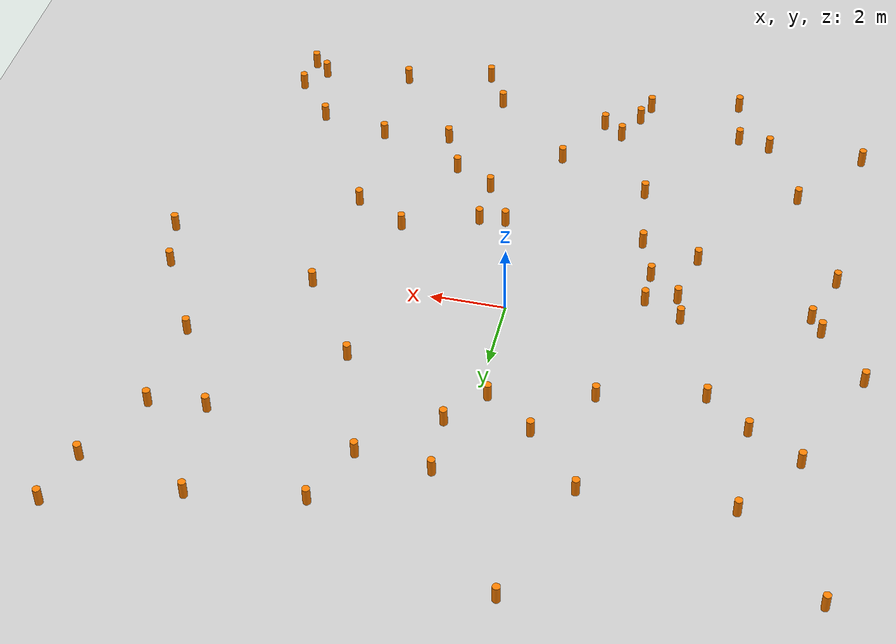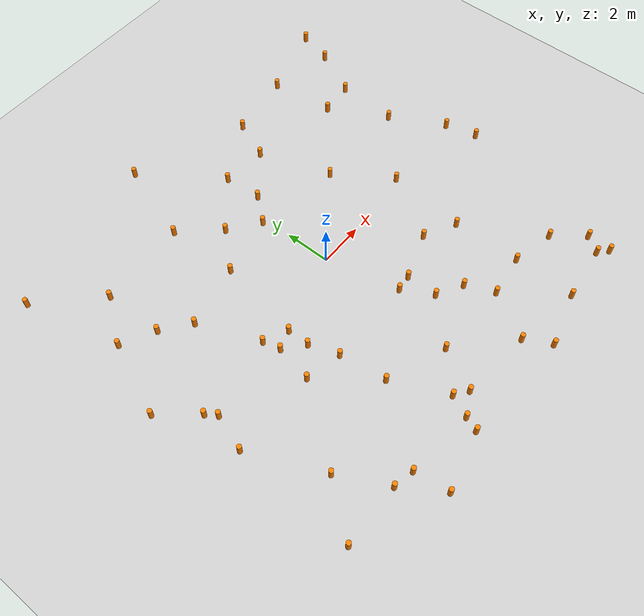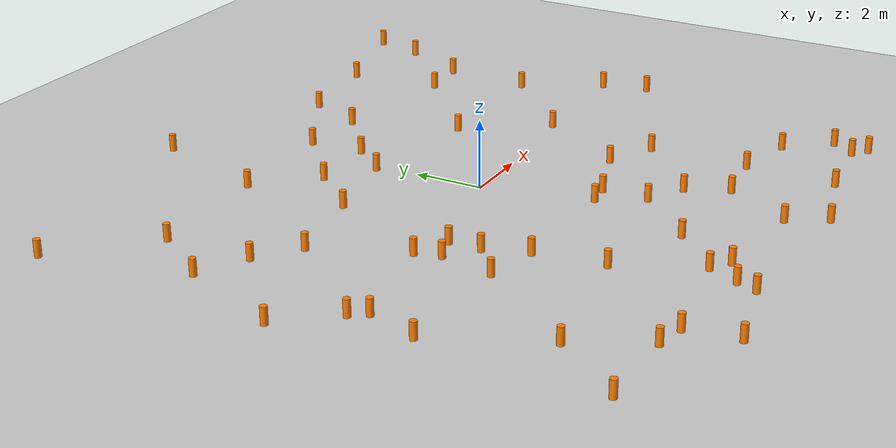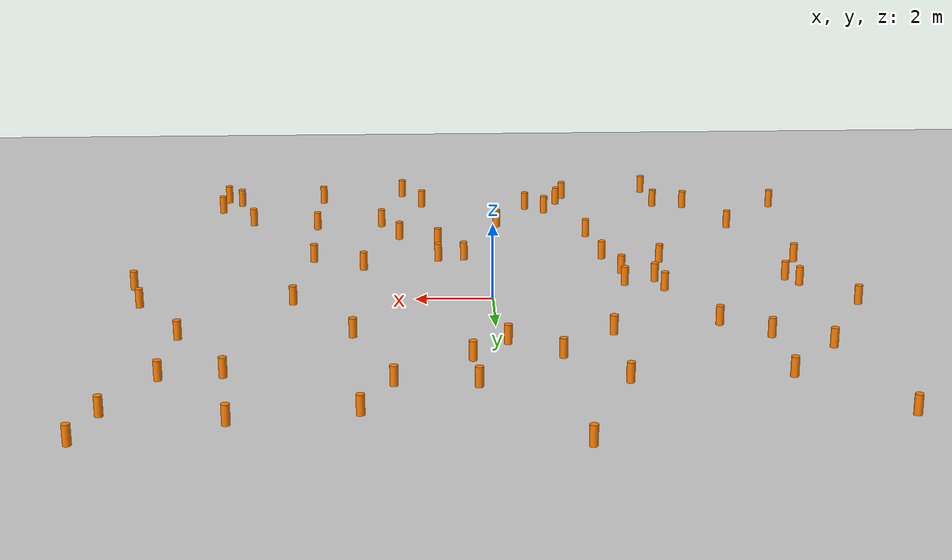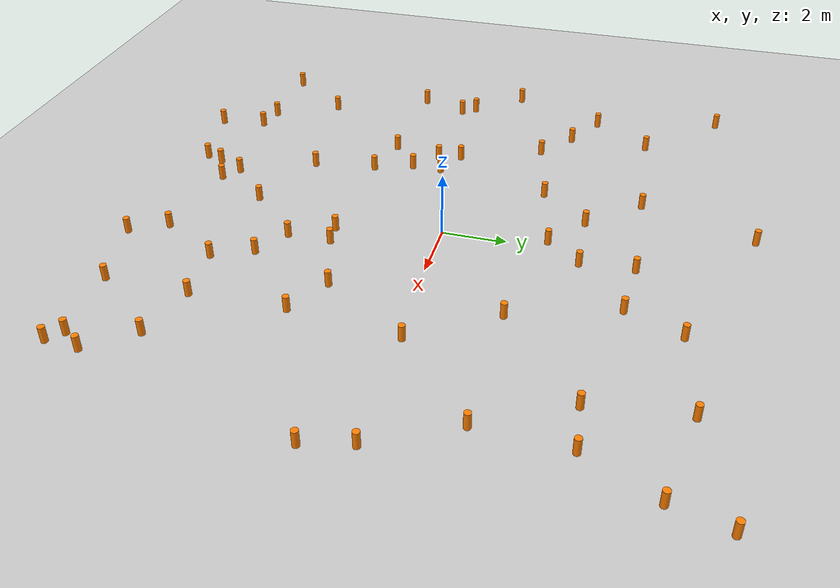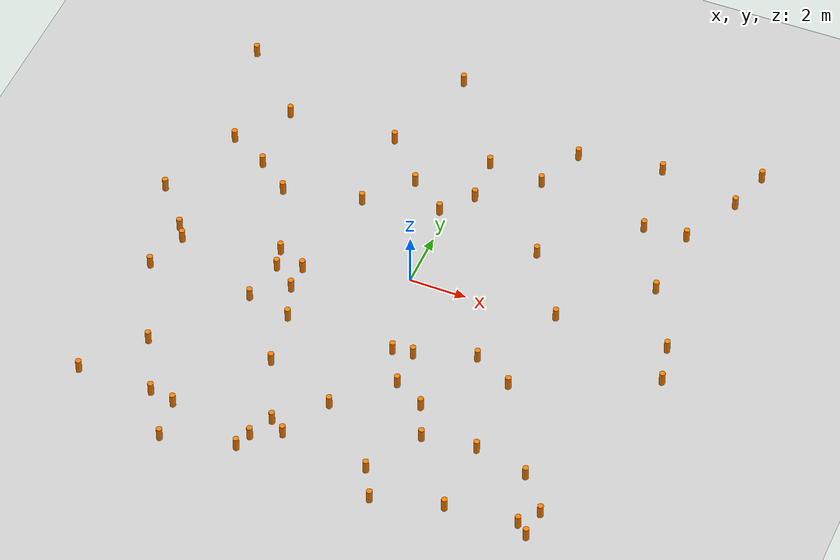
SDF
<?xml version="1.0" ?>
<sdf version="1.8">
  <world name="course_world">

    <!-- Physics (500 Hz) -->
    <physics name="500hz" type="dart">
      <max_step_size>0.002</max_step_size>
      <real_time_factor>1.0</real_time_factor>
      <real_time_update_rate>500</real_time_update_rate>
    </physics>

    <!-- Plugins -->
    <plugin filename="gz-sim-physics-system" name="gz::sim::systems::Physics"/>
    <plugin filename="gz-sim-sensors-system" name="gz::sim::systems::Sensors">
      <render_engine>ogre2</render_engine>
    </plugin>
    <plugin filename="gz-sim-user-commands-system" name="gz::sim::systems::UserCommands"/>
    <plugin filename="gz-sim-scene-broadcaster-system" name="gz::sim::systems::SceneBroadcaster"/>
    <plugin filename="gz-sim-contact-system" name="gz::sim::systems::Contact"/>

    <!-- Lighting -->
    <light type="directional" name="sun">
      <cast_shadows>false</cast_shadows>
      <pose>0 0 10 0 0 0</pose>
      <diffuse>0.8 0.8 0.8 1</diffuse>
      <specular>0.2 0.2 0.2 1</specular>
      <attenuation>
        <range>1000</range>
        <constant>0.9</constant>
        <linear>0.01</linear>
        <quadratic>0.001</quadratic>
      </attenuation>
      <direction>-0.5 0.1 -0.9</direction>
    </light>

    <!-- Ground Plane -->
    <model name="ground_plane">
      <static>true</static>
      <link name="link">
        <collision name="collision">
          <geometry>
            <plane>
              <normal>0 0 1</normal>
              <size>100 100</size>
            </plane>
          </geometry>
        </collision>
        <visual name="visual">
          <geometry>
            <plane>
              <normal>0 0 1</normal>
              <size>100 100</size>
            </plane>
          </geometry>
          <material>
            <ambient>0.8 0.8 0.8 1</ambient>
            <diffuse>0.8 0.8 0.8 1</diffuse>
            <specular>0.8 0.8 0.8 1</specular>
          </material>
        </visual>
      </link>
    </model>
    <model name="cylinder_1">
      <static>true</static>
      <pose>-8.51 -7.84 0.25 0 0 0</pose>
      <link name="link">
        <collision name="collision">
          <geometry>
            <cylinder>
              <radius>0.1</radius>
              <length>0.5</length>
            </cylinder>
          </geometry>
        </collision>
        <visual name="visual">
          <geometry>
            <cylinder>
              <radius>0.1</radius>
              <length>0.5</length>
            </cylinder>
          </geometry>
          <material>
            <ambient>1 0.5 0 1</ambient>
            <diffuse>1 0.5 0 1</diffuse>
          </material>
        </visual>
      </link>
    </model>

    <model name="cylinder_2">
      <static>true</static>
      <pose>-1.76 -7.45 0.25 0 0 0</pose>
      <link name="link">
        <collision name="collision">
          <geometry>
            <cylinder>
              <radius>0.1</radius>
              <length>0.5</length>
            </cylinder>
          </geometry>
        </collision>
        <visual name="visual">
          <geometry>
            <cylinder>
              <radius>0.1</radius>
              <length>0.5</length>
            </cylinder>
          </geometry>
          <material>
            <ambient>1 0.5 0 1</ambient>
            <diffuse>1 0.5 0 1</diffuse>
          </material>
        </visual>
      </link>
    </model>

    <model name="cylinder_3">
      <static>true</static>
      <pose>7.62 -8.78 0.25 0 0 0</pose>
      <link name="link">
        <collision name="collision">
          <geometry>
            <cylinder>
              <radius>0.1</radius>
              <length>0.5</length>
            </cylinder>
          </geometry>
        </collision>
        <visual name="visual">
          <geometry>
            <cylinder>
              <radius>0.1</radius>
              <length>0.5</length>
            </cylinder>
          </geometry>
          <material>
            <ambient>1 0.5 0 1</ambient>
            <diffuse>1 0.5 0 1</diffuse>
          </material>
        </visual>
      </link>
    </model>

    <model name="cylinder_4">
      <static>true</static>
      <pose>0.69 -3.19 0.25 0 0 0</pose>
      <link name="link">
        <collision name="collision">
          <geometry>
            <cylinder>
              <radius>0.1</radius>
              <length>0.5</length>
            </cylinder>
          </geometry>
        </collision>
        <visual name="visual">
          <geometry>
            <cylinder>
              <radius>0.1</radius>
              <length>0.5</length>
            </cylinder>
          </geometry>
          <material>
            <ambient>1 0.5 0 1</ambient>
            <diffuse>1 0.5 0 1</diffuse>
          </material>
        </visual>
      </link>
    </model>

    <model name="cylinder_5">
      <static>true</static>
      <pose>6.69 -6.47 0.25 0 0 0</pose>
      <link name="link">
        <collision name="collision">
          <geometry>
            <cylinder>
              <radius>0.1</radius>
              <length>0.5</length>
            </cylinder>
          </geometry>
        </collision>
        <visual name="visual">
          <geometry>
            <cylinder>
              <radius>0.1</radius>
              <length>0.5</length>
            </cylinder>
          </geometry>
          <material>
            <ambient>1 0.5 0 1</ambient>
            <diffuse>1 0.5 0 1</diffuse>
          </material>
        </visual>
      </link>
    </model>

    <model name="cylinder_6">
      <static>true</static>
      <pose>-3.09 -3.16 0.25 0 0 0</pose>
      <link name="link">
        <collision name="collision">
          <geometry>
            <cylinder>
              <radius>0.1</radius>
              <length>0.5</length>
            </cylinder>
          </geometry>
        </collision>
        <visual name="visual">
          <geometry>
            <cylinder>
              <radius>0.1</radius>
              <length>0.5</length>
            </cylinder>
          </geometry>
          <material>
            <ambient>1 0.5 0 1</ambient>
            <diffuse>1 0.5 0 1</diffuse>
          </material>
        </visual>
      </link>
    </model>

    <model name="cylinder_7">
      <static>true</static>
      <pose>-4.84 -9.47 0.25 0 0 0</pose>
      <link name="link">
        <collision name="collision">
          <geometry>
            <cylinder>
              <radius>0.1</radius>
              <length>0.5</length>
            </cylinder>
          </geometry>
        </collision>
        <visual name="visual">
          <geometry>
            <cylinder>
              <radius>0.1</radius>
              <length>0.5</length>
            </cylinder>
          </geometry>
          <material>
            <ambient>1 0.5 0 1</ambient>
            <diffuse>1 0.5 0 1</diffuse>
          </material>
        </visual>
      </link>
    </model>

    <model name="cylinder_8">
      <static>true</static>
      <pose>-1.21 -7.84 0.25 0 0 0</pose>
      <link name="link">
        <collision name="collision">
          <geometry>
            <cylinder>
              <radius>0.1</radius>
              <length>0.5</length>
            </cylinder>
          </geometry>
        </collision>
        <visual name="visual">
          <geometry>
            <cylinder>
              <radius>0.1</radius>
              <length>0.5</length>
            </cylinder>
          </geometry>
          <material>
            <ambient>1 0.5 0 1</ambient>
            <diffuse>1 0.5 0 1</diffuse>
          </material>
        </visual>
      </link>
    </model>

    <model name="cylinder_9">
      <static>true</static>
      <pose>1.85 -8.17 0.25 0 0 0</pose>
      <link name="link">
        <collision name="collision">
          <geometry>
            <cylinder>
              <radius>0.1</radius>
              <length>0.5</length>
            </cylinder>
          </geometry>
        </collision>
        <visual name="visual">
          <geometry>
            <cylinder>
              <radius>0.1</radius>
              <length>0.5</length>
            </cylinder>
          </geometry>
          <material>
            <ambient>1 0.5 0 1</ambient>
            <diffuse>1 0.5 0 1</diffuse>
          </material>
        </visual>
      </link>
    </model>

    <model name="cylinder_10">
      <static>true</static>
      <pose>-3.51 -0.98 0.25 0 0 0</pose>
      <link name="link">
        <collision name="collision">
          <geometry>
            <cylinder>
              <radius>0.1</radius>
              <length>0.5</length>
            </cylinder>
          </geometry>
        </collision>
        <visual name="visual">
          <geometry>
            <cylinder>
              <radius>0.1</radius>
              <length>0.5</length>
            </cylinder>
          </geometry>
          <material>
            <ambient>1 0.5 0 1</ambient>
            <diffuse>1 0.5 0 1</diffuse>
          </material>
        </visual>
      </link>
    </model>

    <model name="cylinder_11">
      <static>true</static>
      <pose>7.7 -7.74 0.25 0 0 0</pose>
      <link name="link">
        <collision name="collision">
          <geometry>
            <cylinder>
              <radius>0.1</radius>
              <length>0.5</length>
            </cylinder>
          </geometry>
        </collision>
        <visual name="visual">
          <geometry>
            <cylinder>
              <radius>0.1</radius>
              <length>0.5</length>
            </cylinder>
          </geometry>
          <material>
            <ambient>1 0.5 0 1</ambient>
            <diffuse>1 0.5 0 1</diffuse>
          </material>
        </visual>
      </link>
    </model>

    <model name="cylinder_12">
      <static>true</static>
      <pose>-6.8 5.51 0.25 0 0 0</pose>
      <link name="link">
        <collision name="collision">
          <geometry>
            <cylinder>
              <radius>0.1</radius>
              <length>0.5</length>
            </cylinder>
          </geometry>
        </collision>
        <visual name="visual">
          <geometry>
            <cylinder>
              <radius>0.1</radius>
              <length>0.5</length>
            </cylinder>
          </geometry>
          <material>
            <ambient>1 0.5 0 1</ambient>
            <diffuse>1 0.5 0 1</diffuse>
          </material>
        </visual>
      </link>
    </model>

    <model name="cylinder_13">
      <static>true</static>
      <pose>-9.1 7.81 0.25 0 0 0</pose>
      <link name="link">
        <collision name="collision">
          <geometry>
            <cylinder>
              <radius>0.1</radius>
              <length>0.5</length>
            </cylinder>
          </geometry>
        </collision>
        <visual name="visual">
          <geometry>
            <cylinder>
              <radius>0.1</radius>
              <length>0.5</length>
            </cylinder>
          </geometry>
          <material>
            <ambient>1 0.5 0 1</ambient>
            <diffuse>1 0.5 0 1</diffuse>
          </material>
        </visual>
      </link>
    </model>

    <model name="cylinder_14">
      <static>true</static>
      <pose>1.39 -4.46 0.25 0 0 0</pose>
      <link name="link">
        <collision name="collision">
          <geometry>
            <cylinder>
              <radius>0.1</radius>
              <length>0.5</length>
            </cylinder>
          </geometry>
        </collision>
        <visual name="visual">
          <geometry>
            <cylinder>
              <radius>0.1</radius>
              <length>0.5</length>
            </cylinder>
          </geometry>
          <material>
            <ambient>1 0.5 0 1</ambient>
            <diffuse>1 0.5 0 1</diffuse>
          </material>
        </visual>
      </link>
    </model>

    <model name="cylinder_15">
      <static>true</static>
      <pose>6.42 5.11 0.25 0 0 0</pose>
      <link name="link">
        <collision name="collision">
          <geometry>
            <cylinder>
              <radius>0.1</radius>
              <length>0.5</length>
            </cylinder>
          </geometry>
        </collision>
        <visual name="visual">
          <geometry>
            <cylinder>
              <radius>0.1</radius>
              <length>0.5</length>
            </cylinder>
          </geometry>
          <material>
            <ambient>1 0.5 0 1</ambient>
            <diffuse>1 0.5 0 1</diffuse>
          </material>
        </visual>
      </link>
    </model>

    <model name="cylinder_16">
      <static>true</static>
      <pose>-2.97 5.73 0.25 0 0 0</pose>
      <link name="link">
        <collision name="collision">
          <geometry>
            <cylinder>
              <radius>0.1</radius>
              <length>0.5</length>
            </cylinder>
          </geometry>
        </collision>
        <visual name="visual">
          <geometry>
            <cylinder>
              <radius>0.1</radius>
              <length>0.5</length>
            </cylinder>
          </geometry>
          <material>
            <ambient>1 0.5 0 1</ambient>
            <diffuse>1 0.5 0 1</diffuse>
          </material>
        </visual>
      </link>
    </model>

    <model name="cylinder_17">
      <static>true</static>
      <pose>-5.57 2.07 0.25 0 0 0</pose>
      <link name="link">
        <collision name="collision">
          <geometry>
            <cylinder>
              <radius>0.1</radius>
              <length>0.5</length>
            </cylinder>
          </geometry>
        </collision>
        <visual name="visual">
          <geometry>
            <cylinder>
              <radius>0.1</radius>
              <length>0.5</length>
            </cylinder>
          </geometry>
          <material>
            <ambient>1 0.5 0 1</ambient>
            <diffuse>1 0.5 0 1</diffuse>
          </material>
        </visual>
      </link>
    </model>

    <model name="cylinder_18">
      <static>true</static>
      <pose>0.51 5.88 0.25 0 0 0</pose>
      <link name="link">
        <collision name="collision">
          <geometry>
            <cylinder>
              <radius>0.1</radius>
              <length>0.5</length>
            </cylinder>
          </geometry>
        </collision>
        <visual name="visual">
          <geometry>
            <cylinder>
              <radius>0.1</radius>
              <length>0.5</length>
            </cylinder>
          </geometry>
          <material>
            <ambient>1 0.5 0 1</ambient>
            <diffuse>1 0.5 0 1</diffuse>
          </material>
        </visual>
      </link>
    </model>

    <model name="cylinder_19">
      <static>true</static>
      <pose>-3.51 -1.93 0.25 0 0 0</pose>
      <link name="link">
        <collision name="collision">
          <geometry>
            <cylinder>
              <radius>0.1</radius>
              <length>0.5</length>
            </cylinder>
          </geometry>
        </collision>
        <visual name="visual">
          <geometry>
            <cylinder>
              <radius>0.1</radius>
              <length>0.5</length>
            </cylinder>
          </geometry>
          <material>
            <ambient>1 0.5 0 1</ambient>
            <diffuse>1 0.5 0 1</diffuse>
          </material>
        </visual>
      </link>
    </model>

    <model name="cylinder_20">
      <static>true</static>
      <pose>5.12 0.24 0.25 0 0 0</pose>
      <link name="link">
        <collision name="collision">
          <geometry>
            <cylinder>
              <radius>0.1</radius>
              <length>0.5</length>
            </cylinder>
          </geometry>
        </collision>
        <visual name="visual">
          <geometry>
            <cylinder>
              <radius>0.1</radius>
              <length>0.5</length>
            </cylinder>
          </geometry>
          <material>
            <ambient>1 0.5 0 1</ambient>
            <diffuse>1 0.5 0 1</diffuse>
          </material>
        </visual>
      </link>
    </model>

    <model name="cylinder_21">
      <static>true</static>
      <pose>3.51 2.63 0.25 0 0 0</pose>
      <link name="link">
        <collision name="collision">
          <geometry>
            <cylinder>
              <radius>0.1</radius>
              <length>0.5</length>
            </cylinder>
          </geometry>
        </collision>
        <visual name="visual">
          <geometry>
            <cylinder>
              <radius>0.1</radius>
              <length>0.5</length>
            </cylinder>
          </geometry>
          <material>
            <ambient>1 0.5 0 1</ambient>
            <diffuse>1 0.5 0 1</diffuse>
          </material>
        </visual>
      </link>
    </model>

    <model name="cylinder_22">
      <static>true</static>
      <pose>3.17 7.41 0.25 0 0 0</pose>
      <link name="link">
        <collision name="collision">
          <geometry>
            <cylinder>
              <radius>0.1</radius>
              <length>0.5</length>
            </cylinder>
          </geometry>
        </collision>
        <visual name="visual">
          <geometry>
            <cylinder>
              <radius>0.1</radius>
              <length>0.5</length>
            </cylinder>
          </geometry>
          <material>
            <ambient>1 0.5 0 1</ambient>
            <diffuse>1 0.5 0 1</diffuse>
          </material>
        </visual>
      </link>
    </model>

    <model name="cylinder_23">
      <static>true</static>
      <pose>-0.26 3.2 0.25 0 0 0</pose>
      <link name="link">
        <collision name="collision">
          <geometry>
            <cylinder>
              <radius>0.1</radius>
              <length>0.5</length>
            </cylinder>
          </geometry>
        </collision>
        <visual name="visual">
          <geometry>
            <cylinder>
              <radius>0.1</radius>
              <length>0.5</length>
            </cylinder>
          </geometry>
          <material>
            <ambient>1 0.5 0 1</ambient>
            <diffuse>1 0.5 0 1</diffuse>
          </material>
        </visual>
      </link>
    </model>

    <model name="cylinder_24">
      <static>true</static>
      <pose>-2.38 -8.9 0.25 0 0 0</pose>
      <link name="link">
        <collision name="collision">
          <geometry>
            <cylinder>
              <radius>0.1</radius>
              <length>0.5</length>
            </cylinder>
          </geometry>
        </collision>
        <visual name="visual">
          <geometry>
            <cylinder>
              <radius>0.1</radius>
              <length>0.5</length>
            </cylinder>
          </geometry>
          <material>
            <ambient>1 0.5 0 1</ambient>
            <diffuse>1 0.5 0 1</diffuse>
          </material>
        </visual>
      </link>
    </model>

    <model name="cylinder_25">
      <static>true</static>
      <pose>4.83 -6.05 0.25 0 0 0</pose>
      <link name="link">
        <collision name="collision">
          <geometry>
            <cylinder>
              <radius>0.1</radius>
              <length>0.5</length>
            </cylinder>
          </geometry>
        </collision>
        <visual name="visual">
          <geometry>
            <cylinder>
              <radius>0.1</radius>
              <length>0.5</length>
            </cylinder>
          </geometry>
          <material>
            <ambient>1 0.5 0 1</ambient>
            <diffuse>1 0.5 0 1</diffuse>
          </material>
        </visual>
      </link>
    </model>

    <model name="cylinder_26">
      <static>true</static>
      <pose>6.08 7.86 0.25 0 0 0</pose>
      <link name="link">
        <collision name="collision">
          <geometry>
            <cylinder>
              <radius>0.1</radius>
              <length>0.5</length>
            </cylinder>
          </geometry>
        </collision>
        <visual name="visual">
          <geometry>
            <cylinder>
              <radius>0.1</radius>
              <length>0.5</length>
            </cylinder>
          </geometry>
          <material>
            <ambient>1 0.5 0 1</ambient>
            <diffuse>1 0.5 0 1</diffuse>
          </material>
        </visual>
      </link>
    </model>

    <model name="cylinder_27">
      <static>true</static>
      <pose>3.0 -6.27 0.25 0 0 0</pose>
      <link name="link">
        <collision name="collision">
          <geometry>
            <cylinder>
              <radius>0.1</radius>
              <length>0.5</length>
            </cylinder>
          </geometry>
        </collision>
        <visual name="visual">
          <geometry>
            <cylinder>
              <radius>0.1</radius>
              <length>0.5</length>
            </cylinder>
          </geometry>
          <material>
            <ambient>1 0.5 0 1</ambient>
            <diffuse>1 0.5 0 1</diffuse>
          </material>
        </visual>
      </link>
    </model>

    <model name="cylinder_28">
      <static>true</static>
      <pose>-8.11 -0.82 0.25 0 0 0</pose>
      <link name="link">
        <collision name="collision">
          <geometry>
            <cylinder>
              <radius>0.1</radius>
              <length>0.5</length>
            </cylinder>
          </geometry>
        </collision>
        <visual name="visual">
          <geometry>
            <cylinder>
              <radius>0.1</radius>
              <length>0.5</length>
            </cylinder>
          </geometry>
          <material>
            <ambient>1 0.5 0 1</ambient>
            <diffuse>1 0.5 0 1</diffuse>
          </material>
        </visual>
      </link>
    </model>

    <model name="cylinder_29">
      <static>true</static>
      <pose>1.39 -3.11 0.25 0 0 0</pose>
      <link name="link">
        <collision name="collision">
          <geometry>
            <cylinder>
              <radius>0.1</radius>
              <length>0.5</length>
            </cylinder>
          </geometry>
        </collision>
        <visual name="visual">
          <geometry>
            <cylinder>
              <radius>0.1</radius>
              <length>0.5</length>
            </cylinder>
          </geometry>
          <material>
            <ambient>1 0.5 0 1</ambient>
            <diffuse>1 0.5 0 1</diffuse>
          </material>
        </visual>
      </link>
    </model>

    <model name="cylinder_30">
      <static>true</static>
      <pose>-5.91 -7.83 0.25 0 0 0</pose>
      <link name="link">
        <collision name="collision">
          <geometry>
            <cylinder>
              <radius>0.1</radius>
              <length>0.5</length>
            </cylinder>
          </geometry>
        </collision>
        <visual name="visual">
          <geometry>
            <cylinder>
              <radius>0.1</radius>
              <length>0.5</length>
            </cylinder>
          </geometry>
          <material>
            <ambient>1 0.5 0 1</ambient>
            <diffuse>1 0.5 0 1</diffuse>
          </material>
        </visual>
      </link>
    </model>

    <model name="cylinder_31">
      <static>true</static>
      <pose>2.44 -9.26 0.25 0 0 0</pose>
      <link name="link">
        <collision name="collision">
          <geometry>
            <cylinder>
              <radius>0.1</radius>
              <length>0.5</length>
            </cylinder>
          </geometry>
        </collision>
        <visual name="visual">
          <geometry>
            <cylinder>
              <radius>0.1</radius>
              <length>0.5</length>
            </cylinder>
          </geometry>
          <material>
            <ambient>1 0.5 0 1</ambient>
            <diffuse>1 0.5 0 1</diffuse>
          </material>
        </visual>
      </link>
    </model>

    <model name="cylinder_32">
      <static>true</static>
      <pose>-2.81 -5.15 0.25 0 0 0</pose>
      <link name="link">
        <collision name="collision">
          <geometry>
            <cylinder>
              <radius>0.1</radius>
              <length>0.5</length>
            </cylinder>
          </geometry>
        </collision>
        <visual name="visual">
          <geometry>
            <cylinder>
              <radius>0.1</radius>
              <length>0.5</length>
            </cylinder>
          </geometry>
          <material>
            <ambient>1 0.5 0 1</ambient>
            <diffuse>1 0.5 0 1</diffuse>
          </material>
        </visual>
      </link>
    </model>

    <model name="cylinder_33">
      <static>true</static>
      <pose>0.61 4.25 0.25 0 0 0</pose>
      <link name="link">
        <collision name="collision">
          <geometry>
            <cylinder>
              <radius>0.1</radius>
              <length>0.5</length>
            </cylinder>
          </geometry>
        </collision>
        <visual name="visual">
          <geometry>
            <cylinder>
              <radius>0.1</radius>
              <length>0.5</length>
            </cylinder>
          </geometry>
          <material>
            <ambient>1 0.5 0 1</ambient>
            <diffuse>1 0.5 0 1</diffuse>
          </material>
        </visual>
      </link>
    </model>

    <model name="cylinder_34">
      <static>true</static>
      <pose>7.77 2.64 0.25 0 0 0</pose>
      <link name="link">
        <collision name="collision">
          <geometry>
            <cylinder>
              <radius>0.1</radius>
              <length>0.5</length>
            </cylinder>
          </geometry>
        </collision>
        <visual name="visual">
          <geometry>
            <cylinder>
              <radius>0.1</radius>
              <length>0.5</length>
            </cylinder>
          </geometry>
          <material>
            <ambient>1 0.5 0 1</ambient>
            <diffuse>1 0.5 0 1</diffuse>
          </material>
        </visual>
      </link>
    </model>

    <model name="cylinder_35">
      <static>true</static>
      <pose>9.34 8.82 0.25 0 0 0</pose>
      <link name="link">
        <collision name="collision">
          <geometry>
            <cylinder>
              <radius>0.1</radius>
              <length>0.5</length>
            </cylinder>
          </geometry>
        </collision>
        <visual name="visual">
          <geometry>
            <cylinder>
              <radius>0.1</radius>
              <length>0.5</length>
            </cylinder>
          </geometry>
          <material>
            <ambient>1 0.5 0 1</ambient>
            <diffuse>1 0.5 0 1</diffuse>
          </material>
        </visual>
      </link>
    </model>

    <model name="cylinder_36">
      <static>true</static>
      <pose>2.47 -5.07 0.25 0 0 0</pose>
      <link name="link">
        <collision name="collision">
          <geometry>
            <cylinder>
              <radius>0.1</radius>
              <length>0.5</length>
            </cylinder>
          </geometry>
        </collision>
        <visual name="visual">
          <geometry>
            <cylinder>
              <radius>0.1</radius>
              <length>0.5</length>
            </cylinder>
          </geometry>
          <material>
            <ambient>1 0.5 0 1</ambient>
            <diffuse>1 0.5 0 1</diffuse>
          </material>
        </visual>
      </link>
    </model>

    <model name="cylinder_37">
      <static>true</static>
      <pose>-0.31 -6.13 0.25 0 0 0</pose>
      <link name="link">
        <collision name="collision">
          <geometry>
            <cylinder>
              <radius>0.1</radius>
              <length>0.5</length>
            </cylinder>
          </geometry>
        </collision>
        <visual name="visual">
          <geometry>
            <cylinder>
              <radius>0.1</radius>
              <length>0.5</length>
            </cylinder>
          </geometry>
          <material>
            <ambient>1 0.5 0 1</ambient>
            <diffuse>1 0.5 0 1</diffuse>
          </material>
        </visual>
      </link>
    </model>

    <model name="cylinder_38">
      <static>true</static>
      <pose>9.35 -1.05 0.25 0 0 0</pose>
      <link name="link">
        <collision name="collision">
          <geometry>
            <cylinder>
              <radius>0.1</radius>
              <length>0.5</length>
            </cylinder>
          </geometry>
        </collision>
        <visual name="visual">
          <geometry>
            <cylinder>
              <radius>0.1</radius>
              <length>0.5</length>
            </cylinder>
          </geometry>
          <material>
            <ambient>1 0.5 0 1</ambient>
            <diffuse>1 0.5 0 1</diffuse>
          </material>
        </visual>
      </link>
    </model>

    <model name="cylinder_39">
      <static>true</static>
      <pose>4.78 -8.66 0.25 0 0 0</pose>
      <link name="link">
        <collision name="collision">
          <geometry>
            <cylinder>
              <radius>0.1</radius>
              <length>0.5</length>
            </cylinder>
          </geometry>
        </collision>
        <visual name="visual">
          <geometry>
            <cylinder>
              <radius>0.1</radius>
              <length>0.5</length>
            </cylinder>
          </geometry>
          <material>
            <ambient>1 0.5 0 1</ambient>
            <diffuse>1 0.5 0 1</diffuse>
          </material>
        </visual>
      </link>
    </model>

    <model name="cylinder_40">
      <static>true</static>
      <pose>-6.94 -5.83 0.25 0 0 0</pose>
      <link name="link">
        <collision name="collision">
          <geometry>
            <cylinder>
              <radius>0.1</radius>
              <length>0.5</length>
            </cylinder>
          </geometry>
        </collision>
        <visual name="visual">
          <geometry>
            <cylinder>
              <radius>0.1</radius>
              <length>0.5</length>
            </cylinder>
          </geometry>
          <material>
            <ambient>1 0.5 0 1</ambient>
            <diffuse>1 0.5 0 1</diffuse>
          </material>
        </visual>
      </link>
    </model>

    <model name="cylinder_41">
      <static>true</static>
      <pose>-4.63 -2.81 0.25 0 0 0</pose>
      <link name="link">
        <collision name="collision">
          <geometry>
            <cylinder>
              <radius>0.1</radius>
              <length>0.5</length>
            </cylinder>
          </geometry>
        </collision>
        <visual name="visual">
          <geometry>
            <cylinder>
              <radius>0.1</radius>
              <length>0.5</length>
            </cylinder>
          </geometry>
          <material>
            <ambient>1 0.5 0 1</ambient>
            <diffuse>1 0.5 0 1</diffuse>
          </material>
        </visual>
      </link>
    </model>

    <model name="cylinder_42">
      <static>true</static>
      <pose>-4.33 -1.25 0.25 0 0 0</pose>
      <link name="link">
        <collision name="collision">
          <geometry>
            <cylinder>
              <radius>0.1</radius>
              <length>0.5</length>
            </cylinder>
          </geometry>
        </collision>
        <visual name="visual">
          <geometry>
            <cylinder>
              <radius>0.1</radius>
              <length>0.5</length>
            </cylinder>
          </geometry>
          <material>
            <ambient>1 0.5 0 1</ambient>
            <diffuse>1 0.5 0 1</diffuse>
          </material>
        </visual>
      </link>
    </model>

    <model name="cylinder_43">
      <static>true</static>
      <pose>-8.31 -2.75 0.25 0 0 0</pose>
      <link name="link">
        <collision name="collision">
          <geometry>
            <cylinder>
              <radius>0.1</radius>
              <length>0.5</length>
            </cylinder>
          </geometry>
        </collision>
        <visual name="visual">
          <geometry>
            <cylinder>
              <radius>0.1</radius>
              <length>0.5</length>
            </cylinder>
          </geometry>
          <material>
            <ambient>1 0.5 0 1</ambient>
            <diffuse>1 0.5 0 1</diffuse>
          </material>
        </visual>
      </link>
    </model>

    <model name="cylinder_44">
      <static>true</static>
      <pose>-7.81 -1.27 0.25 0 0 0</pose>
      <link name="link">
        <collision name="collision">
          <geometry>
            <cylinder>
              <radius>0.1</radius>
              <length>0.5</length>
            </cylinder>
          </geometry>
        </collision>
        <visual name="visual">
          <geometry>
            <cylinder>
              <radius>0.1</radius>
              <length>0.5</length>
            </cylinder>
          </geometry>
          <material>
            <ambient>1 0.5 0 1</ambient>
            <diffuse>1 0.5 0 1</diffuse>
          </material>
        </visual>
      </link>
    </model>

    <model name="cylinder_45">
      <static>true</static>
      <pose>-9.34 0.68 0.25 0 0 0</pose>
      <link name="link">
        <collision name="collision">
          <geometry>
            <cylinder>
              <radius>0.1</radius>
              <length>0.5</length>
            </cylinder>
          </geometry>
        </collision>
        <visual name="visual">
          <geometry>
            <cylinder>
              <radius>0.1</radius>
              <length>0.5</length>
            </cylinder>
          </geometry>
          <material>
            <ambient>1 0.5 0 1</ambient>
            <diffuse>1 0.5 0 1</diffuse>
          </material>
        </visual>
      </link>
    </model>

    <model name="cylinder_46">
      <static>true</static>
      <pose>-8.1 3.69 0.25 0 0 0</pose>
      <link name="link">
        <collision name="collision">
          <geometry>
            <cylinder>
              <radius>0.1</radius>
              <length>0.5</length>
            </cylinder>
          </geometry>
        </collision>
        <visual name="visual">
          <geometry>
            <cylinder>
              <radius>0.1</radius>
              <length>0.5</length>
            </cylinder>
          </geometry>
          <material>
            <ambient>1 0.5 0 1</ambient>
            <diffuse>1 0.5 0 1</diffuse>
          </material>
        </visual>
      </link>
    </model>

    <model name="cylinder_47">
      <static>true</static>
      <pose>-1.82 9.22 0.25 0 0 0</pose>
      <link name="link">
        <collision name="collision">
          <geometry>
            <cylinder>
              <radius>0.1</radius>
              <length>0.5</length>
            </cylinder>
          </geometry>
        </collision>
        <visual name="visual">
          <geometry>
            <cylinder>
              <radius>0.1</radius>
              <length>0.5</length>
            </cylinder>
          </geometry>
          <material>
            <ambient>1 0.5 0 1</ambient>
            <diffuse>1 0.5 0 1</diffuse>
          </material>
        </visual>
      </link>
    </model>

    <model name="cylinder_48">
      <static>true</static>
      <pose>-4.51 -0.52 0.25 0 0 0</pose>
      <link name="link">
        <collision name="collision">
          <geometry>
            <cylinder>
              <radius>0.1</radius>
              <length>0.5</length>
            </cylinder>
          </geometry>
        </collision>
        <visual name="visual">
          <geometry>
            <cylinder>
              <radius>0.1</radius>
              <length>0.5</length>
            </cylinder>
          </geometry>
          <material>
            <ambient>1 0.5 0 1</ambient>
            <diffuse>1 0.5 0 1</diffuse>
          </material>
        </visual>
      </link>
    </model>

    <model name="cylinder_49">
      <static>true</static>
      <pose>4.77 -3.14 0.25 0 0 0</pose>
      <link name="link">
        <collision name="collision">
          <geometry>
            <cylinder>
              <radius>0.1</radius>
              <length>0.5</length>
            </cylinder>
          </geometry>
        </collision>
        <visual name="visual">
          <geometry>
            <cylinder>
              <radius>0.1</radius>
              <length>0.5</length>
            </cylinder>
          </geometry>
          <material>
            <ambient>1 0.5 0 1</ambient>
            <diffuse>1 0.5 0 1</diffuse>
          </material>
        </visual>
      </link>
    </model>

    <model name="cylinder_50">
      <static>true</static>
      <pose>-2.88 2.64 0.25 0 0 0</pose>
      <link name="link">
        <collision name="collision">
          <geometry>
            <cylinder>
              <radius>0.1</radius>
              <length>0.5</length>
            </cylinder>
          </geometry>
        </collision>
        <visual name="visual">
          <geometry>
            <cylinder>
              <radius>0.1</radius>
              <length>0.5</length>
            </cylinder>
          </geometry>
          <material>
            <ambient>1 0.5 0 1</ambient>
            <diffuse>1 0.5 0 1</diffuse>
          </material>
        </visual>
      </link>
    </model>

    <model name="cylinder_51">
      <static>true</static>
      <pose>8.92 7.29 0.25 0 0 0</pose>
      <link name="link">
        <collision name="collision">
          <geometry>
            <cylinder>
              <radius>0.1</radius>
              <length>0.5</length>
            </cylinder>
          </geometry>
        </collision>
        <visual name="visual">
          <geometry>
            <cylinder>
              <radius>0.1</radius>
              <length>0.5</length>
            </cylinder>
          </geometry>
          <material>
            <ambient>1 0.5 0 1</ambient>
            <diffuse>1 0.5 0 1</diffuse>
          </material>
        </visual>
      </link>
    </model>

    <model name="cylinder_52">
      <static>true</static>
      <pose>-1.54 4.14 0.25 0 0 0</pose>
      <link name="link">
        <collision name="collision">
          <geometry>
            <cylinder>
              <radius>0.1</radius>
              <length>0.5</length>
            </cylinder>
          </geometry>
        </collision>
        <visual name="visual">
          <geometry>
            <cylinder>
              <radius>0.1</radius>
              <length>0.5</length>
            </cylinder>
          </geometry>
          <material>
            <ambient>1 0.5 0 1</ambient>
            <diffuse>1 0.5 0 1</diffuse>
          </material>
        </visual>
      </link>
    </model>

    <model name="cylinder_53">
      <static>true</static>
      <pose>3.4 -2.43 0.25 0 0 0</pose>
      <link name="link">
        <collision name="collision">
          <geometry>
            <cylinder>
              <radius>0.1</radius>
              <length>0.5</length>
            </cylinder>
          </geometry>
        </collision>
        <visual name="visual">
          <geometry>
            <cylinder>
              <radius>0.1</radius>
              <length>0.5</length>
            </cylinder>
          </geometry>
          <material>
            <ambient>1 0.5 0 1</ambient>
            <diffuse>1 0.5 0 1</diffuse>
          </material>
        </visual>
      </link>
    </model>

    <model name="cylinder_54">
      <static>true</static>
      <pose>-5.04 -8.01 0.25 0 0 0</pose>
      <link name="link">
        <collision name="collision">
          <geometry>
            <cylinder>
              <radius>0.1</radius>
              <length>0.5</length>
            </cylinder>
          </geometry>
        </collision>
        <visual name="visual">
          <geometry>
            <cylinder>
              <radius>0.1</radius>
              <length>0.5</length>
            </cylinder>
          </geometry>
          <material>
            <ambient>1 0.5 0 1</ambient>
            <diffuse>1 0.5 0 1</diffuse>
          </material>
        </visual>
      </link>
    </model>

    <model name="cylinder_55">
      <static>true</static>
      <pose>7.2 -8.41 0.25 0 0 0</pose>
      <link name="link">
        <collision name="collision">
          <geometry>
            <cylinder>
              <radius>0.1</radius>
              <length>0.5</length>
            </cylinder>
          </geometry>
        </collision>
        <visual name="visual">
          <geometry>
            <cylinder>
              <radius>0.1</radius>
              <length>0.5</length>
            </cylinder>
          </geometry>
          <material>
            <ambient>1 0.5 0 1</ambient>
            <diffuse>1 0.5 0 1</diffuse>
          </material>
        </visual>
      </link>
    </model>

    <model name="cylinder_56">
      <static>true</static>
      <pose>-6.72 2.96 0.25 0 0 0</pose>
      <link name="link">
        <collision name="collision">
          <geometry>
            <cylinder>
              <radius>0.1</radius>
              <length>0.5</length>
            </cylinder>
          </geometry>
        </collision>
        <visual name="visual">
          <geometry>
            <cylinder>
              <radius>0.1</radius>
              <length>0.5</length>
            </cylinder>
          </geometry>
          <material>
            <ambient>1 0.5 0 1</ambient>
            <diffuse>1 0.5 0 1</diffuse>
          </material>
        </visual>
      </link>
    </model>

    <model name="cylinder_57">
      <static>true</static>
      <pose>7.9 5.25 0.25 0 0 0</pose>
      <link name="link">
        <collision name="collision">
          <geometry>
            <cylinder>
              <radius>0.1</radius>
              <length>0.5</length>
            </cylinder>
          </geometry>
        </collision>
        <visual name="visual">
          <geometry>
            <cylinder>
              <radius>0.1</radius>
              <length>0.5</length>
            </cylinder>
          </geometry>
          <material>
            <ambient>1 0.5 0 1</ambient>
            <diffuse>1 0.5 0 1</diffuse>
          </material>
        </visual>
      </link>
    </model>

    <model name="cylinder_58">
      <static>true</static>
      <pose>9.02 0.32 0.25 0 0 0</pose>
      <link name="link">
        <collision name="collision">
          <geometry>
            <cylinder>
              <radius>0.1</radius>
              <length>0.5</length>
            </cylinder>
          </geometry>
        </collision>
        <visual name="visual">
          <geometry>
            <cylinder>
              <radius>0.1</radius>
              <length>0.5</length>
            </cylinder>
          </geometry>
          <material>
            <ambient>1 0.5 0 1</ambient>
            <diffuse>1 0.5 0 1</diffuse>
          </material>
        </visual>
      </link>
    </model>

    <model name="cylinder_59">
      <static>true</static>
      <pose>2.46 5.74 0.25 0 0 0</pose>
      <link name="link">
        <collision name="collision">
          <geometry>
            <cylinder>
              <radius>0.1</radius>
              <length>0.5</length>
            </cylinder>
          </geometry>
        </collision>
        <visual name="visual">
          <geometry>
            <cylinder>
              <radius>0.1</radius>
              <length>0.5</length>
            </cylinder>
          </geometry>
          <material>
            <ambient>1 0.5 0 1</ambient>
            <diffuse>1 0.5 0 1</diffuse>
          </material>
        </visual>
      </link>
    </model>

    <model name="cylinder_60">
      <static>true</static>
      <pose>-2.16 -8.32 0.25 0 0 0</pose>
      <link name="link">
        <collision name="collision">
          <geometry>
            <cylinder>
              <radius>0.1</radius>
              <length>0.5</length>
            </cylinder>
          </geometry>
        </collision>
        <visual name="visual">
          <geometry>
            <cylinder>
              <radius>0.1</radius>
              <length>0.5</length>
            </cylinder>
          </geometry>
          <material>
            <ambient>1 0.5 0 1</ambient>
            <diffuse>1 0.5 0 1</diffuse>
          </material>
        </visual>
      </link>
    </model>

  </world>
</sdf>
